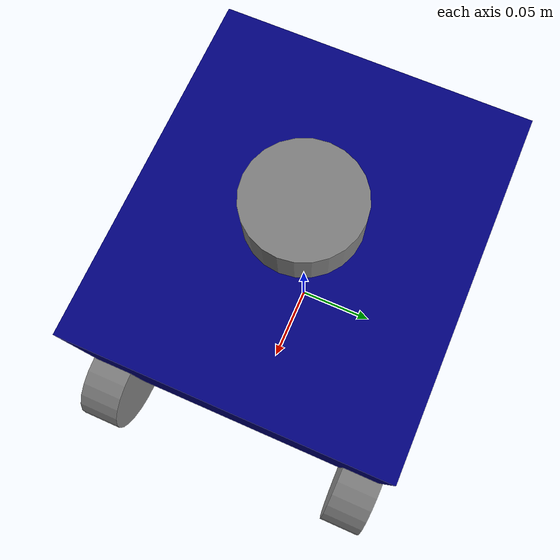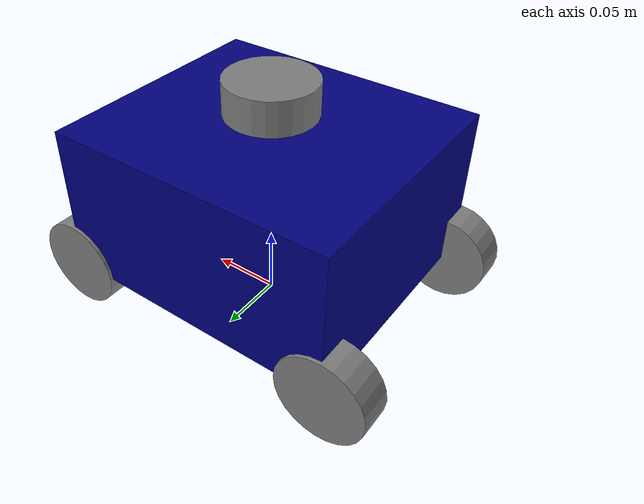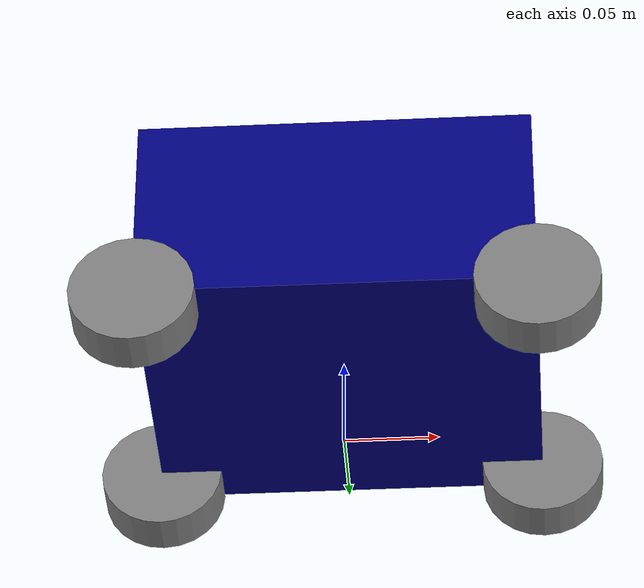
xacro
<?xml version="1.0"?>
<robot name="my_robot" xmlns:xacro="http://www.ros.org/wiki/xacro">

    <!-- Параметры -->
    <xacro:arg name="encoder_ppr_arg" default="988"/>
    <xacro:arg name="baudrate_arg" default="115200"/>
    <xacro:arg name="serial_port_name_arg" default="/dev/ttyUSB0"/>

    <!-- Вспомогательные модули -->
    <xacro:include filename="materials.xacro" />
    <xacro:include filename="properties.xacro" />
    <xacro:include filename="inertial_macros.xacro" />

    <!-- Основные модули -->
    <xacro:include filename="base.xacro" />
    <xacro:include filename="wheels.xacro" />
    <xacro:include filename="lidar.xacro" />

    <!-- Подключаемые модули -->

</robot>

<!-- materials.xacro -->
<robot xmlns:xacro="http://www.ros.org/wiki/xacro">

    <material name="blue">
        <color rgba="0 0 0.5 1" />
    </material>

    <material name="grey">
        <color rgba="0.5 0.5 0.5 1" />
    </material>

    <material name="white">
        <color rgba="1.0 1.0 1.0 1.0"/>
    </material>

</robot>

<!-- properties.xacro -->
<robot xmlns:xacro="http://www.ros.org/wiki/xacro">

    <xacro:property name="base_mass" value="1.0" />
    <xacro:property name="base_length" value="0.21" />
    <xacro:property name="base_width" value="0.185" />
    <xacro:property name="base_height" value="0.11" />

    <xacro:property name="wheel_mass" value="0.1" />
    <xacro:property name="wheel_count" value="4" />
    <xacro:property name="wheel_radius" value="0.033" />
    <xacro:property name="wheel_length" value="0.025" />
    <xacro:property name="wheel_separation_x" value="0.210" />
    <xacro:property name="wheel_separation_y" value="0.165" />

    <xacro:property name="lidar_mass" value="0.1" />
    <xacro:property name="lidar_length" value="0.025" />
    <xacro:property name="lidar_radius" value="0.0325" />
    <xacro:property name="lidar_offset_z" value="0.13" />

</robot>

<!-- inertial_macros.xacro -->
<robot xmlns:xacro="http://www.ros.org/wiki/xacro">

    <xacro:macro name="cylinder_inertial" params="mass radius length">
        <inertial>
            <origin xyz="0 0 0" rpy="0 0 0"/>
            <mass value="${mass}"/>
            <inertia ixx="${(mass/12.0)*(3*radius*radius + length*length)}"
                    iyy="${(mass/4.0)*radius*radius + (mass/12.0)*length*length}"
                    izz="${(mass/4.0)*radius*radius + (mass/12.0)*length*length}"
                    ixy="0" ixz="0" iyz="0"/>
        </inertial>
    </xacro:macro>

    <xacro:macro name="box_inertial" params="mass length width height">
        <inertial>
            <origin xyz="0 0 ${height/2}" rpy="0 0 0"/>
            <mass value="${mass}"/>
            <inertia ixx="${(mass/12.0)*(width*width + height*height)}"
                    iyy="${(mass/12.0)*(length*length + height*height)}"
                    izz="${(mass/12.0)*(length*length + width*width)}"
                    ixy="0" ixz="0" iyz="0"/>
        </inertial>
    </xacro:macro>

</robot>

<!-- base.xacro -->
<robot xmlns:xacro="http://www.ros.org/wiki/xacro">

    <!-- Ссылки -->
    <link name="base_footprint" />

    <link name="base_link">
        <visual>
            <geometry>
                <box size="${base_length} ${base_width} ${base_height}" />
            </geometry>
            <origin xyz="0 0 ${base_height / 2.0}" rpy="0 0 0" />
            <material name="blue" />
        </visual>
        <collision>
            <geometry>
                <box size="${base_length} ${base_width} ${base_height}" />
            </geometry>
            <origin xyz="0 0 ${base_height / 2.0}" rpy="0 0 0" />
        </collision>
        <xacro:box_inertial mass="${base_mass}" length="${base_length}" width="${base_width}" height="${base_height}"/>
    </link>

    <!-- Соединения -->
    <joint name="base_joint" type="fixed">
        <parent link="base_footprint" />
        <child link="base_link" />
        <origin xyz="0 0 ${wheel_radius}" rpy="0 0 0" />
    </joint>

</robot>

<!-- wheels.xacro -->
<robot xmlns:xacro="http://www.ros.org/wiki/xacro">

    <!-- Макрос -->
    <xacro:macro name="wheel_link" params="prefix">
        <link name="${prefix}_wheel_link">
            <visual>
                <geometry>
                    <cylinder radius="${wheel_radius}" length="${wheel_length}" />
                </geometry>
                <origin xyz="0 0 0" rpy="${pi / 2.0} 0 0" />
                <material name="grey" />
            </visual>
            <collision>
                <geometry>
                    <cylinder radius="${wheel_radius}" length="${wheel_length}" />
                </geometry>
                <origin xyz="0 0 0" rpy="${pi / 2.0} 0 0" />
            </collision>
            <xacro:cylinder_inertial mass="${wheel_mass}" radius="${wheel_radius}" length="${wheel_length}"/>
        </link>
    </xacro:macro>

    <!-- Ссылки -->
    <xacro:wheel_link prefix="front_left" />
    <xacro:wheel_link prefix="front_right" />
    <xacro:wheel_link prefix="rear_left" />
    <xacro:wheel_link prefix="rear_right" />

    <!-- Соединения -->
    <joint name="base_front_left_wheel_joint" type="continuous">
        <parent link="base_link" />
        <child link="front_left_wheel_link" />
        <origin xyz="${wheel_separation_x / 2} ${wheel_separation_y / 2} 0" />
        <axis xyz="0 1 0" />
    </joint>

    <joint name="base_front_right_wheel_joint" type="continuous">
        <parent link="base_link" />
        <child link="front_right_wheel_link" />
        <origin xyz="${wheel_separation_x / 2} ${ - wheel_separation_y / 2} 0" />
        <axis xyz="0 1 0" />
    </joint>

    <joint name="base_rear_left_wheel_joint" type="continuous">
        <parent link="base_link" />
        <child link="rear_left_wheel_link" />
        <origin xyz="${ - wheel_separation_x / 2} ${wheel_separation_y / 2} 0" />
        <axis xyz="0 1 0" />
    </joint>

    <joint name="base_rear_right_wheel_joint" type="continuous">
        <parent link="base_link" />
        <child link="rear_right_wheel_link" />
        <origin xyz="${ - wheel_separation_x / 2} ${ - wheel_separation_y / 2} 0" />
        <axis xyz="0 1 0" />
    </joint>

</robot>

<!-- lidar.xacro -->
<robot xmlns:xacro="http://www.ros.org/wiki/xacro" name="lidar">

  <!-- Ссылка -->
  <link name="laser_frame">
    <visual>
      <geometry>
        <cylinder radius="${lidar_radius}" length="${lidar_length}"/>
      </geometry>
      <origin xyz="0 0 0" rpy="0 0 0"/>
      <material name="grey"/>
    </visual>
    <collision>
      <geometry>
        <cylinder radius="${lidar_radius}" length="${lidar_length}"/>
      </geometry>
      <origin xyz="0 0 0" rpy="0 0 0"/>
    </collision>
    <xacro:cylinder_inertial mass="${lidar_mass}" radius="${lidar_radius}" length="${lidar_length}"/>
  </link>

  <!-- Соединение -->
  <joint name="base_lidar_joint" type="fixed">
    <parent link="base_link"/>
    <child link="laser_frame"/>
    <origin xyz="0 0 ${lidar_offset_z}" rpy="0 0 0"/>
  </joint>

</robot>
